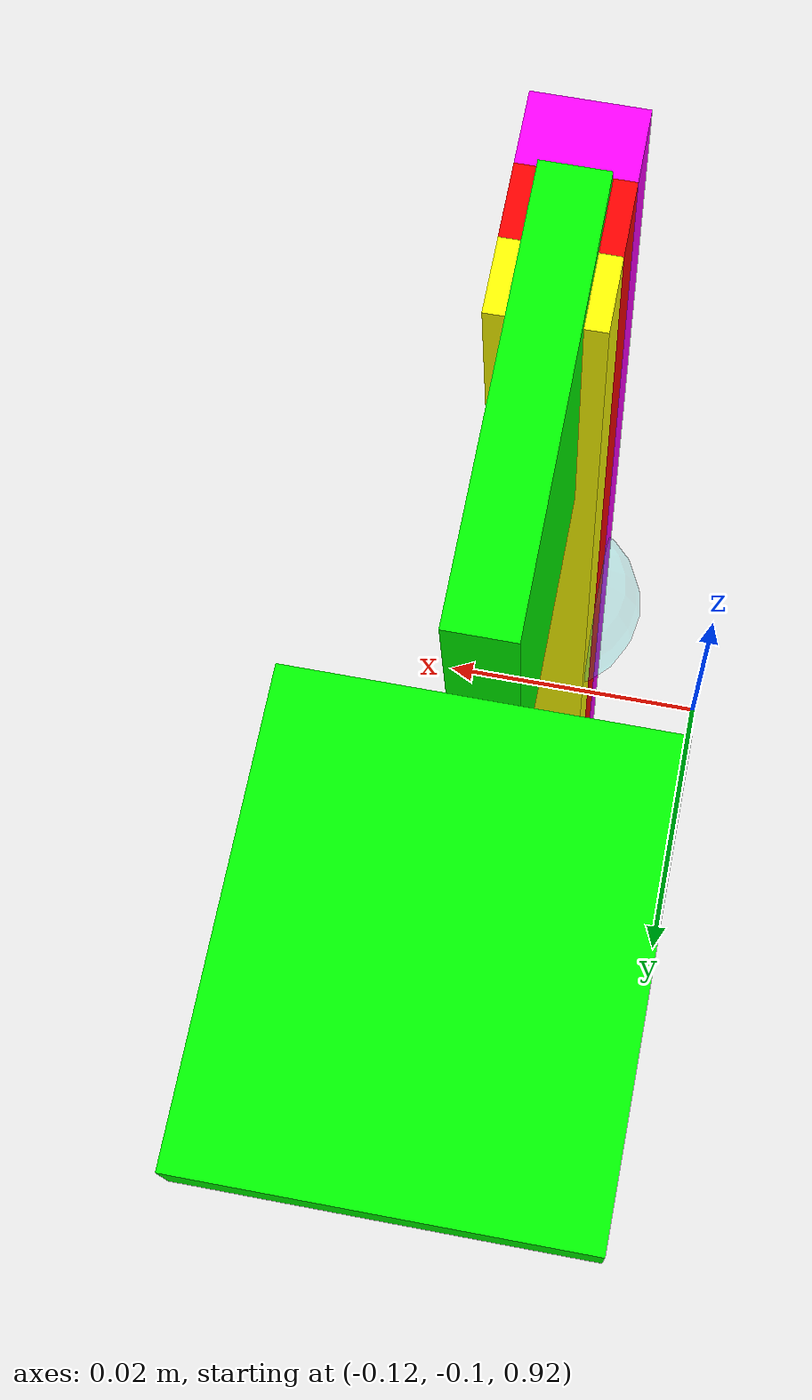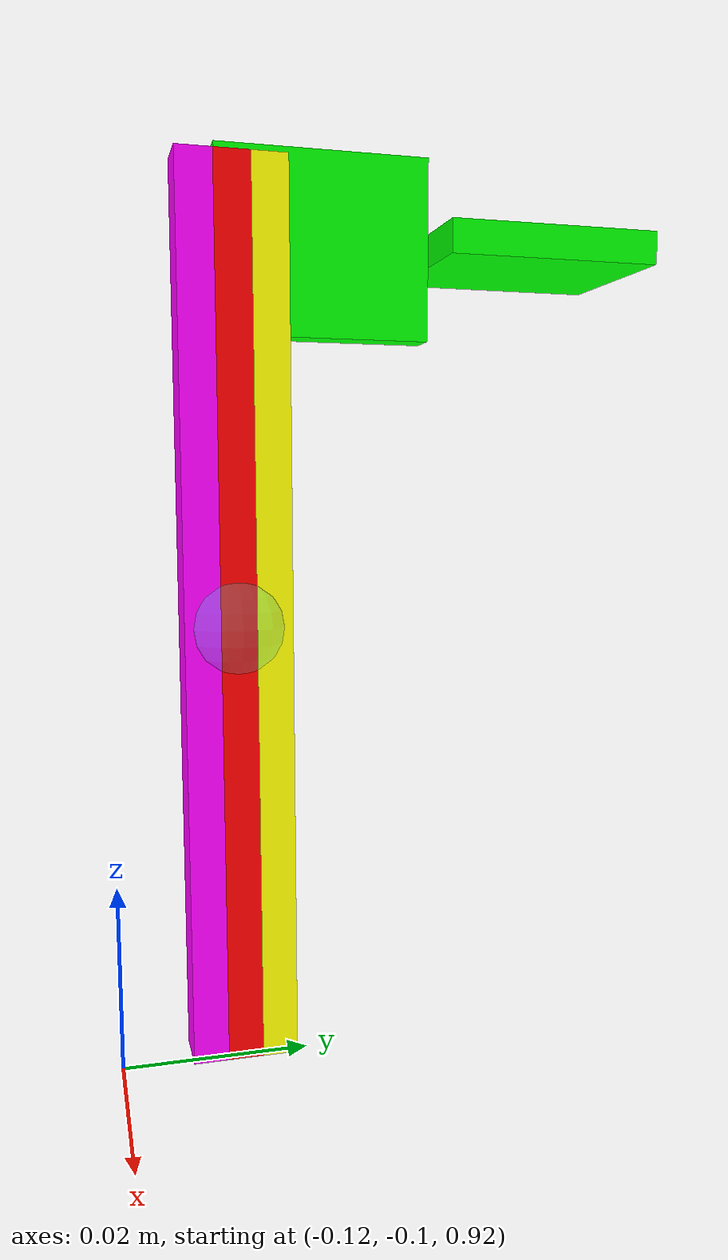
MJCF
<mujoco>
	<option gravity="0 0 -10"/>
	<option timestep="0.001" iterations="150"/>
	<worldbody>
		<light diffuse=".5 .5 .5" pos="0 0 12" dir="0 0 -1"/>

<!--Than-->
<body pos="0 0 1">

	<!--Chan, damping="0.00183"-->
	<!--Thanh dam xoan 1-->
	<body pos="-0.11 -0.06 0.0035">

		<geom type="box" density="1200" size=".0083 .01 .0015" rgba="0 1 0 1"/>

			<body pos="0 -.0201 0" euler=" 0 90 0">
				<!-- Uon quanh Z -->
				<joint type="hinge" name = "X2" axis="0 0 -1" stiffness="1.062072" damping="2.21209" springref="0" frictionloss="0" pos="0 .01 0"/>
				<!-- Xoan quanh Y -->
				<joint type="hinge"  name="Y2" axis="0 -1 0" stiffness="0.0024" damping="0.0000183" springref="0" frictionloss="0" pos="0 .01 0" />

				<geom type="box" density="1200" size=".0083 .01 .0015" rgba="0 1 0 1"/>
				<!--Ban chan-->

				<body name ="O" pos=" .035  -.0085 -0.00" euler=" 90 90 0">
					<geom type="box" density="1240" size=".0017 .0025 .0425" pos="-.0034 0 0" rgba="1 0 1 1" friction="0.6 0.002 0.002" solref="0.003 1.2" solimp="0.9 0.95 0.001"/>
					<geom type="box" density="1240" size=".0017 .0025 .0425" pos="0 0 0" rgba="1 0 0 1" friction="0.6 0.002 0.002" solref="0.003 1.2" solimp="0.9 0.95 0.001"/>
					<geom type="box" density="1240" size=".0017 .0025 .0425" pos=".0034 0 0" rgba="1 1 0 1" friction="0.6 0.002 0.002" solref="0.003 1.2" solimp="0.9 0.95 0.001"/>

					<site name="S1" rgba="0 1 1 .2"/>
						<!--sensor-->
				</body>

			</body>
		</body>

</body>

	</worldbody>

	<actuator>
		<motor joint="Y2" gear="0.1"/>
	</actuator>

	<sensor>
		<framequat objtype="site" objname="S1" name="framequat_S1"/>
	</sensor>

</mujoco>
